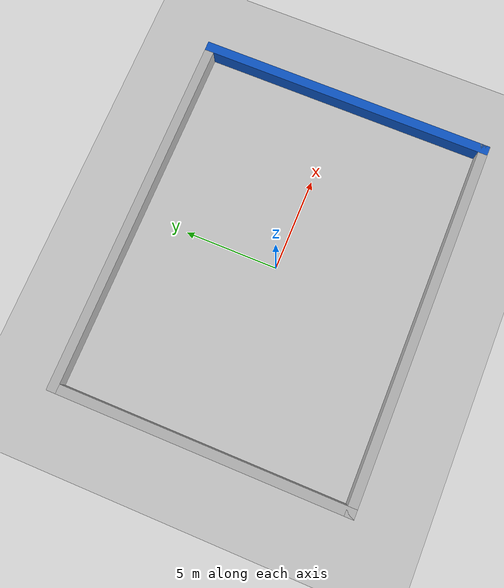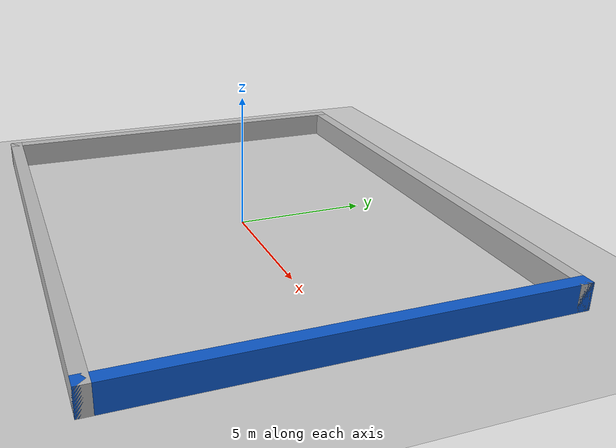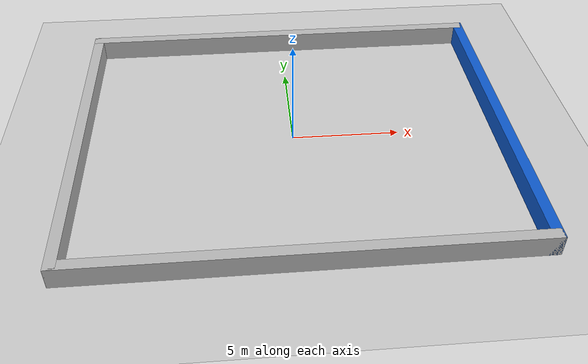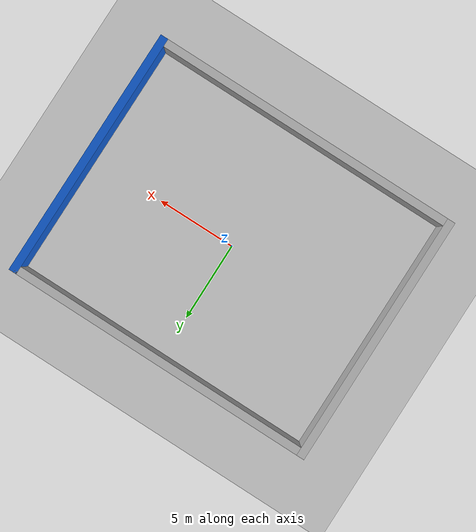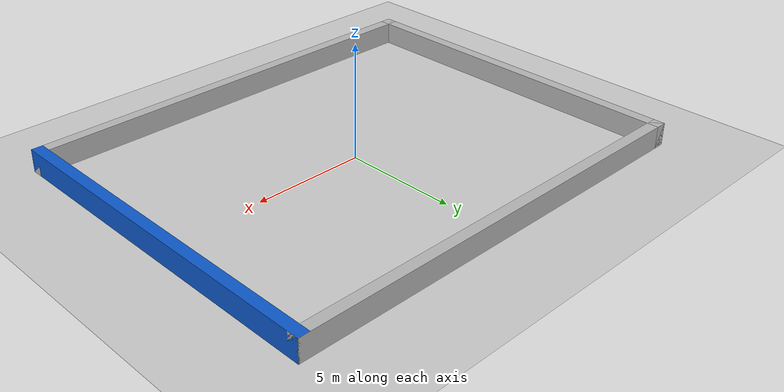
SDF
<?xml version="1.0"?>
<sdf version="1.7">
  <world name="single_room">
    <physics name="3ms" type="ode">
      <max_step_size>0.003</max_step_size>
      <real_time_update_rate>1000.0</real_time_update_rate>
      <real_time_factor>1.0</real_time_factor>
    </physics>

    <plugin filename="gz-sim-physics-system" name="gz::sim::systems::Physics"/>
    <plugin filename="gz-sim-user-commands-system" name="gz::sim::systems::UserCommands"/>
    <plugin filename="gz-sim-scene-broadcaster-system" name="gz::sim::systems::SceneBroadcaster"/>
    <plugin filename="gz-sim-sensors-system" name="gz::sim::systems::Sensors">
      <render_engine>ogre2</render_engine>
    </plugin>
    <plugin filename="gz-sim-imu-system" name="gz::sim::systems::Imu"/>

    <light name="sun" type="directional">
      <pose>0 0 10 0 0 0</pose>
      <diffuse>0.8 0.8 0.8 1</diffuse>
      <specular>0.2 0.2 0.2 1</specular>
      <direction>-0.5 0.1 -0.9</direction>
    </light>

    <model name="ground_plane">
      <static>true</static>
      <link name="link">
        <collision name="collision">
          <geometry><plane><normal>0 0 1</normal><size>100 100</size></plane></geometry>
        </collision>
        <visual name="visual">
          <geometry><plane><normal>0 0 1</normal><size>100 100</size></plane></geometry>
          <material><ambient>0.8 0.8 0.8 1</ambient><diffuse>0.8 0.8 0.8 1</diffuse></material>
        </visual>
      </link>
    </model>

    <model name="left_wall">
      <static>true</static>
      <pose>-9.75 0 0.5 0 0 0</pose>
      <link name="link">
        <collision name="collision"><geometry><box><size>0.5 16 1</size></box></geometry></collision>
        <visual name="visual"><geometry><box><size>0.5 16 1</size></box></geometry></visual>
      </link>
    </model>
    <model name="right_wall">
      <static>true</static>
      <pose>9.75 0 0.5 0 0 0</pose>
      <link name="link">
        <collision name="collision"><geometry><box><size>0.5 16 1</size></box></geometry></collision>
        <visual name="visual">
          <geometry><box><size>0.5 16 1</size></box></geometry>
          <material><ambient>0.05 0.35 0.8 1</ambient><diffuse>0.05 0.35 0.8 1</diffuse></material>
        </visual>
      </link>
    </model>
    <model name="bottom_wall">
      <static>true</static>
      <pose>0 -7.75 0.5 0 0 0</pose>
      <link name="link">
        <collision name="collision"><geometry><box><size>20 0.5 1</size></box></geometry></collision>
        <visual name="visual"><geometry><box><size>20 0.5 1</size></box></geometry></visual>
      </link>
    </model>
    <model name="top_wall">
      <static>true</static>
      <pose>0 7.75 0.5 0 0 0</pose>
      <link name="link">
        <collision name="collision"><geometry><box><size>20 0.5 1</size></box></geometry></collision>
        <visual name="visual"><geometry><box><size>20 0.5 1</size></box></geometry></visual>
      </link>
    </model>
  </world>
</sdf>
